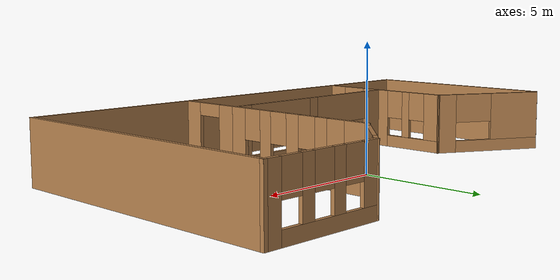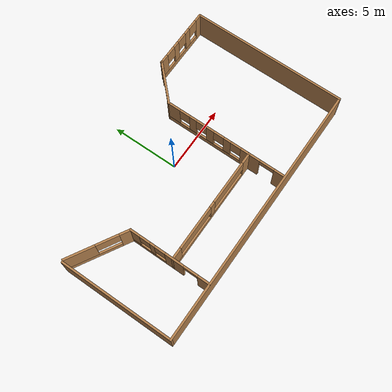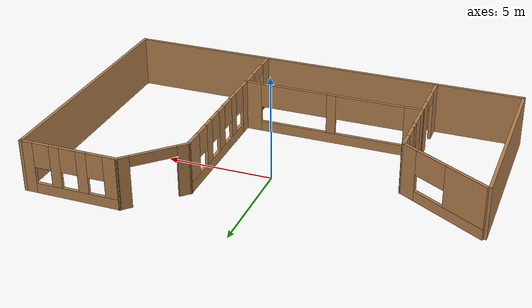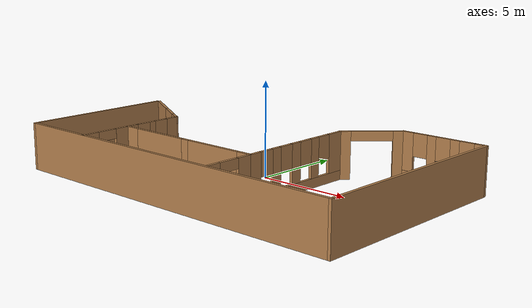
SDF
<?xml version='1.0'?>
<sdf version='1.6'>
  <model name='Robocup'>
    <pose frame=''>-0.08251 -1.14933 0 0 -0 0</pose>
    <link name='Wall_13'>
      <collision name='Wall_13_Collision'>
        <geometry>
          <box>
            <size>8.5 0.15 2.5</size>
          </box>
        </geometry>
        <pose frame=''>0 0 1.25 0 -0 0</pose>
      </collision>
      <visual name='Wall_13_Visual'>
        <pose frame=''>0 0 1.25 0 -0 0</pose>
        <geometry>
          <box>
            <size>8.5 0.15 2.5</size>
          </box>
        </geometry>
        <material>
          <script>
            <uri>file://media/materials/scripts/gazebo.material</uri>
            <name>Gazebo/Wood</name>
          </script>
          <ambient>1 1 1 1</ambient>
        </material>
        <meta>
          <layer>0</layer>
        </meta>
      </visual>
      <pose frame=''>-9.8 -1.64053 0 0 0 -1.5708</pose>
    </link>
    <link name='Wall_15'>
      <collision name='Wall_15_Collision'>
        <geometry>
          <box>
            <size>19.75 0.15 2.5</size>
          </box>
        </geometry>
        <pose frame=''>0 0 1.25 0 -0 0</pose>
      </collision>
      <visual name='Wall_15_Visual'>
        <pose frame=''>0 0 1.25 0 -0 0</pose>
        <geometry>
          <box>
            <size>19.75 0.15 2.5</size>
          </box>
        </geometry>
        <material>
          <script>
            <uri>file://media/materials/scripts/gazebo.material</uri>
            <name>Gazebo/Wood</name>
          </script>
          <ambient>1 1 1 1</ambient>
        </material>
        <meta>
          <layer>0</layer>
        </meta>
      </visual>
      <pose frame=''>0 -5.81553 0 0 -0 0</pose>
    </link>
    <link name='Wall_17'>
      <collision name='Wall_17_Collision'>
        <geometry>
          <box>
            <size>11.75 0.15 2.5</size>
          </box>
        </geometry>
        <pose frame=''>0 0 1.25 0 -0 0</pose>
      </collision>
      <visual name='Wall_17_Visual'>
        <pose frame=''>0 0 1.25 0 -0 0</pose>
        <geometry>
          <box>
            <size>11.75 0.15 2.5</size>
          </box>
        </geometry>
        <material>
          <script>
            <uri>file://media/materials/scripts/gazebo.material</uri>
            <name>Gazebo/Wood</name>
          </script>
          <ambient>1 1 1 1</ambient>
        </material>
        <meta>
          <layer>0</layer>
        </meta>
      </visual>
      <pose frame=''>9.8 -0.015532 0 0 -0 1.5708</pose>
    </link>
    <link name='Wall_18'>
      <pose frame=''>7.5 5.78447 0 0 -0 3.14159</pose>
      <visual name='Wall_18_Visual_0'>
        <pose frame=''>-2.04757 0 1.25 0 -0 0</pose>
        <geometry>
          <box>
            <size>0.654861 0.15 2.5</size>
          </box>
        </geometry>
        <material>
          <script>
            <uri>file://media/materials/scripts/gazebo.material</uri>
            <name>Gazebo/Wood</name>
          </script>
          <ambient>1 1 1 1</ambient>
        </material>
        <meta>
          <layer>0</layer>
        </meta>
      </visual>
      <collision name='Wall_18_Collision_0'>
        <geometry>
          <box>
            <size>0.654861 0.15 2.5</size>
          </box>
        </geometry>
        <pose frame=''>-2.04757 0 1.25 0 -0 0</pose>
      </collision>
      <visual name='Wall_18_Visual_1'>
        <pose frame=''>0.327431 0 0.25 0 -0 0</pose>
        <geometry>
          <box>
            <size>4.09514 0.15 0.5</size>
          </box>
        </geometry>
        <material>
          <script>
            <uri>file://media/materials/scripts/gazebo.material</uri>
            <name>Gazebo/Wood</name>
          </script>
          <ambient>1 1 1 1</ambient>
        </material>
        <meta>
          <layer>0</layer>
        </meta>
      </visual>
      <collision name='Wall_18_Collision_1'>
        <geometry>
          <box>
            <size>4.09514 0.15 0.5</size>
          </box>
        </geometry>
        <pose frame=''>0.327431 0 0.25 0 -0 0</pose>
      </collision>
      <visual name='Wall_18_Visual_2'>
        <pose frame=''>-0.672482 0 1.5 0 -0 0</pose>
        <geometry>
          <box>
            <size>0.495314 0.15 2</size>
          </box>
        </geometry>
        <material>
          <script>
            <uri>file://media/materials/scripts/gazebo.material</uri>
            <name>Gazebo/Wood</name>
          </script>
          <ambient>1 1 1 1</ambient>
        </material>
        <meta>
          <layer>0</layer>
        </meta>
      </visual>
      <collision name='Wall_18_Collision_2'>
        <geometry>
          <box>
            <size>0.495314 0.15 2</size>
          </box>
        </geometry>
        <pose frame=''>-0.672482 0 1.5 0 -0 0</pose>
      </collision>
      <visual name='Wall_18_Visual_3'>
        <pose frame=''>0.622832 0 1.5 0 -0 0</pose>
        <geometry>
          <box>
            <size>0.495314 0.15 2</size>
          </box>
        </geometry>
        <material>
          <script>
            <uri>file://media/materials/scripts/gazebo.material</uri>
            <name>Gazebo/Wood</name>
          </script>
          <ambient>1 1 1 1</ambient>
        </material>
        <meta>
          <layer>0</layer>
        </meta>
      </visual>
      <collision name='Wall_18_Collision_3'>
        <geometry>
          <box>
            <size>0.495314 0.15 2</size>
          </box>
        </geometry>
        <pose frame=''>0.622832 0 1.5 0 -0 0</pose>
      </collision>
      <visual name='Wall_18_Visual_4'>
        <pose frame=''>2.02275 0 1.5 0 -0 0</pose>
        <geometry>
          <box>
            <size>0.704511 0.15 2</size>
          </box>
        </geometry>
        <material>
          <script>
            <uri>file://media/materials/scripts/gazebo.material</uri>
            <name>Gazebo/Wood</name>
          </script>
          <ambient>1 1 1 1</ambient>
        </material>
        <meta>
          <layer>0</layer>
        </meta>
      </visual>
      <collision name='Wall_18_Collision_4'>
        <geometry>
          <box>
            <size>0.704511 0.15 2</size>
          </box>
        </geometry>
        <pose frame=''>2.02275 0 1.5 0 -0 0</pose>
      </collision>
      <visual name='Wall_18_Visual_5'>
        <pose frame=''>-1.32014 0 1.9 0 -0 0</pose>
        <geometry>
          <box>
            <size>0.8 0.15 1.2</size>
          </box>
        </geometry>
        <material>
          <script>
            <uri>file://media/materials/scripts/gazebo.material</uri>
            <name>Gazebo/Wood</name>
          </script>
          <ambient>1 1 1 1</ambient>
        </material>
        <meta>
          <layer>0</layer>
        </meta>
      </visual>
      <collision name='Wall_18_Collision_5'>
        <geometry>
          <box>
            <size>0.8 0.15 1.2</size>
          </box>
        </geometry>
        <pose frame=''>-1.32014 0 1.9 0 -0 0</pose>
      </collision>
      <visual name='Wall_18_Visual_6'>
        <pose frame=''>-0.024825 0 1.9 0 -0 0</pose>
        <geometry>
          <box>
            <size>0.8 0.15 1.2</size>
          </box>
        </geometry>
        <material>
          <script>
            <uri>file://media/materials/scripts/gazebo.material</uri>
            <name>Gazebo/Wood</name>
          </script>
          <ambient>1 1 1 1</ambient>
        </material>
        <meta>
          <layer>0</layer>
        </meta>
      </visual>
      <collision name='Wall_18_Collision_6'>
        <geometry>
          <box>
            <size>0.8 0.15 1.2</size>
          </box>
        </geometry>
        <pose frame=''>-0.024825 0 1.9 0 -0 0</pose>
      </collision>
      <visual name='Wall_18_Visual_7'>
        <pose frame=''>1.27049 0 1.9 0 -0 0</pose>
        <geometry>
          <box>
            <size>0.8 0.15 1.2</size>
          </box>
        </geometry>
        <material>
          <script>
            <uri>file://media/materials/scripts/gazebo.material</uri>
            <name>Gazebo/Wood</name>
          </script>
          <ambient>1 1 1 1</ambient>
        </material>
        <meta>
          <layer>0</layer>
        </meta>
      </visual>
      <collision name='Wall_18_Collision_7'>
        <geometry>
          <box>
            <size>0.8 0.15 1.2</size>
          </box>
        </geometry>
        <pose frame=''>1.27049 0 1.9 0 -0 0</pose>
      </collision>
    </link>
    <link name='Wall_22'>
      <pose frame=''>-1.38838 -2.99714 0 0 -0 3.14159</pose>
      <visual name='Wall_22_Visual_0'>
        <pose frame=''>-3.95278 0 1.25 0 -0 0</pose>
        <geometry>
          <box>
            <size>0.844442 0.15 2.5</size>
          </box>
        </geometry>
        <material>
          <script>
            <uri>file://media/materials/scripts/gazebo.material</uri>
            <name>Gazebo/Wood</name>
          </script>
          <ambient>1 1 1 1</ambient>
        </material>
        <meta>
          <layer>0</layer>
        </meta>
      </visual>
      <collision name='Wall_22_Collision_0'>
        <geometry>
          <box>
            <size>0.844442 0.15 2.5</size>
          </box>
        </geometry>
        <pose frame=''>-3.95278 0 1.25 0 -0 0</pose>
      </collision>
      <visual name='Wall_22_Visual_1'>
        <pose frame=''>0.422221 0 0.25 0 -0 0</pose>
        <geometry>
          <box>
            <size>7.90556 0.15 0.5</size>
          </box>
        </geometry>
        <material>
          <script>
            <uri>file://media/materials/scripts/gazebo.material</uri>
            <name>Gazebo/Wood</name>
          </script>
          <ambient>1 1 1 1</ambient>
        </material>
        <meta>
          <layer>0</layer>
        </meta>
      </visual>
      <collision name='Wall_22_Collision_1'>
        <geometry>
          <box>
            <size>7.90556 0.15 0.5</size>
          </box>
        </geometry>
        <pose frame=''>0.422221 0 0.25 0 -0 0</pose>
      </collision>
      <visual name='Wall_22_Visual_2'>
        <pose frame=''>-0.031057 0 1.5 0 -0 0</pose>
        <geometry>
          <box>
            <size>0.449053 0.15 2</size>
          </box>
        </geometry>
        <material>
          <script>
            <uri>file://media/materials/scripts/gazebo.material</uri>
            <name>Gazebo/Wood</name>
          </script>
          <ambient>1 1 1 1</ambient>
        </material>
        <meta>
          <layer>0</layer>
        </meta>
      </visual>
      <collision name='Wall_22_Collision_2'>
        <geometry>
          <box>
            <size>0.449053 0.15 2</size>
          </box>
        </geometry>
        <pose frame=''>-0.031057 0 1.5 0 -0 0</pose>
      </collision>
      <visual name='Wall_22_Visual_3'>
        <pose frame=''>3.92172 0 1.5 0 -0 0</pose>
        <geometry>
          <box>
            <size>0.906555 0.15 2</size>
          </box>
        </geometry>
        <material>
          <script>
            <uri>file://media/materials/scripts/gazebo.material</uri>
            <name>Gazebo/Wood</name>
          </script>
          <ambient>1 1 1 1</ambient>
        </material>
        <meta>
          <layer>0</layer>
        </meta>
      </visual>
      <collision name='Wall_22_Collision_3'>
        <geometry>
          <box>
            <size>0.906555 0.15 2</size>
          </box>
        </geometry>
        <pose frame=''>3.92172 0 1.5 0 -0 0</pose>
      </collision>
      <visual name='Wall_22_Visual_4'>
        <pose frame=''>-1.89307 0 1.9 0 -0 0</pose>
        <geometry>
          <box>
            <size>3.27497 0.15 1.2</size>
          </box>
        </geometry>
        <material>
          <script>
            <uri>file://media/materials/scripts/gazebo.material</uri>
            <name>Gazebo/Wood</name>
          </script>
          <ambient>1 1 1 1</ambient>
        </material>
        <meta>
          <layer>0</layer>
        </meta>
      </visual>
      <collision name='Wall_22_Collision_4'>
        <geometry>
          <box>
            <size>3.27497 0.15 1.2</size>
          </box>
        </geometry>
        <pose frame=''>-1.89307 0 1.9 0 -0 0</pose>
      </collision>
      <visual name='Wall_22_Visual_5'>
        <pose frame=''>1.83096 0 1.9 0 -0 0</pose>
        <geometry>
          <box>
            <size>3.27497 0.15 1.2</size>
          </box>
        </geometry>
        <material>
          <script>
            <uri>file://media/materials/scripts/gazebo.material</uri>
            <name>Gazebo/Wood</name>
          </script>
          <ambient>1 1 1 1</ambient>
        </material>
        <meta>
          <layer>0</layer>
        </meta>
      </visual>
      <collision name='Wall_22_Collision_5'>
        <geometry>
          <box>
            <size>3.27497 0.15 1.2</size>
          </box>
        </geometry>
        <pose frame=''>1.83096 0 1.9 0 -0 0</pose>
      </collision>
    </link>
    <link name='Wall_26'>
      <pose frame=''>2.93475 0.272603 0 0 -0 1.5708</pose>
      <visual name='Wall_26_Visual_0'>
        <pose frame=''>-2.98586 0 1.25 0 -0 0</pose>
        <geometry>
          <box>
            <size>0.718408 0.15 2.5</size>
          </box>
        </geometry>
        <material>
          <script>
            <uri>file://media/materials/scripts/gazebo.material</uri>
            <name>Gazebo/Wood</name>
          </script>
          <ambient>1 1 1 1</ambient>
        </material>
        <meta>
          <layer>0</layer>
        </meta>
      </visual>
      <collision name='Wall_26_Collision_0'>
        <geometry>
          <box>
            <size>0.718408 0.15 2.5</size>
          </box>
        </geometry>
        <pose frame=''>-2.98586 0 1.25 0 -0 0</pose>
      </collision>
      <visual name='Wall_26_Visual_1'>
        <pose frame=''>0.359204 0 0.25 0 -0 0</pose>
        <geometry>
          <box>
            <size>5.97173 0.15 0.5</size>
          </box>
        </geometry>
        <material>
          <script>
            <uri>file://media/materials/scripts/gazebo.material</uri>
            <name>Gazebo/Wood</name>
          </script>
          <ambient>1 1 1 1</ambient>
        </material>
        <meta>
          <layer>0</layer>
        </meta>
      </visual>
      <collision name='Wall_26_Collision_1'>
        <geometry>
          <box>
            <size>5.97173 0.15 0.5</size>
          </box>
        </geometry>
        <pose frame=''>0.359204 0 0.25 0 -0 0</pose>
      </collision>
      <visual name='Wall_26_Visual_2'>
        <pose frame=''>-1.54474 0 1.5 0 -0 0</pose>
        <geometry>
          <box>
            <size>0.563839 0.15 2</size>
          </box>
        </geometry>
        <material>
          <script>
            <uri>file://media/materials/scripts/gazebo.material</uri>
            <name>Gazebo/Wood</name>
          </script>
          <ambient>1 1 1 1</ambient>
        </material>
        <meta>
          <layer>0</layer>
        </meta>
      </visual>
      <collision name='Wall_26_Collision_2'>
        <geometry>
          <box>
            <size>0.563839 0.15 2</size>
          </box>
        </geometry>
        <pose frame=''>-1.54474 0 1.5 0 -0 0</pose>
      </collision>
      <visual name='Wall_26_Visual_3'>
        <pose frame=''>-0.156104 0 1.5 0 -0 0</pose>
        <geometry>
          <box>
            <size>0.613433 0.15 2</size>
          </box>
        </geometry>
        <material>
          <script>
            <uri>file://media/materials/scripts/gazebo.material</uri>
            <name>Gazebo/Wood</name>
          </script>
          <ambient>1 1 1 1</ambient>
        </material>
        <meta>
          <layer>0</layer>
        </meta>
      </visual>
      <collision name='Wall_26_Collision_3'>
        <geometry>
          <box>
            <size>0.613433 0.15 2</size>
          </box>
        </geometry>
        <pose frame=''>-0.156104 0 1.5 0 -0 0</pose>
      </collision>
      <visual name='Wall_26_Visual_4'>
        <pose frame=''>1.23253 0 1.5 0 -0 0</pose>
        <geometry>
          <box>
            <size>0.563839 0.15 2</size>
          </box>
        </geometry>
        <material>
          <script>
            <uri>file://media/materials/scripts/gazebo.material</uri>
            <name>Gazebo/Wood</name>
          </script>
          <ambient>1 1 1 1</ambient>
        </material>
        <meta>
          <layer>0</layer>
        </meta>
      </visual>
      <collision name='Wall_26_Collision_4'>
        <geometry>
          <box>
            <size>0.563839 0.15 2</size>
          </box>
        </geometry>
        <pose frame=''>1.23253 0 1.5 0 -0 0</pose>
      </collision>
      <visual name='Wall_26_Visual_5'>
        <pose frame=''>2.82976 0 1.5 0 -0 0</pose>
        <geometry>
          <box>
            <size>1.03062 0.15 2</size>
          </box>
        </geometry>
        <material>
          <script>
            <uri>file://media/materials/scripts/gazebo.material</uri>
            <name>Gazebo/Wood</name>
          </script>
          <ambient>1 1 1 1</ambient>
        </material>
        <meta>
          <layer>0</layer>
        </meta>
      </visual>
      <collision name='Wall_26_Collision_5'>
        <geometry>
          <box>
            <size>1.03062 0.15 2</size>
          </box>
        </geometry>
        <pose frame=''>2.82976 0 1.5 0 -0 0</pose>
      </collision>
      <visual name='Wall_26_Visual_6'>
        <pose frame=''>-2.22666 0 1.9 0 -0 0</pose>
        <geometry>
          <box>
            <size>0.8 0.15 1.2</size>
          </box>
        </geometry>
        <material>
          <script>
            <uri>file://media/materials/scripts/gazebo.material</uri>
            <name>Gazebo/Wood</name>
          </script>
          <ambient>1 1 1 1</ambient>
        </material>
        <meta>
          <layer>0</layer>
        </meta>
      </visual>
      <collision name='Wall_26_Collision_6'>
        <geometry>
          <box>
            <size>0.8 0.15 1.2</size>
          </box>
        </geometry>
        <pose frame=''>-2.22666 0 1.9 0 -0 0</pose>
      </collision>
      <visual name='Wall_26_Visual_7'>
        <pose frame=''>-0.862821 0 1.9 0 -0 0</pose>
        <geometry>
          <box>
            <size>0.8 0.15 1.2</size>
          </box>
        </geometry>
        <material>
          <script>
            <uri>file://media/materials/scripts/gazebo.material</uri>
            <name>Gazebo/Wood</name>
          </script>
          <ambient>1 1 1 1</ambient>
        </material>
        <meta>
          <layer>0</layer>
        </meta>
      </visual>
      <collision name='Wall_26_Collision_7'>
        <geometry>
          <box>
            <size>0.8 0.15 1.2</size>
          </box>
        </geometry>
        <pose frame=''>-0.862821 0 1.9 0 -0 0</pose>
      </collision>
      <visual name='Wall_26_Visual_8'>
        <pose frame=''>0.550613 0 1.9 0 -0 0</pose>
        <geometry>
          <box>
            <size>0.8 0.15 1.2</size>
          </box>
        </geometry>
        <material>
          <script>
            <uri>file://media/materials/scripts/gazebo.material</uri>
            <name>Gazebo/Wood</name>
          </script>
          <ambient>1 1 1 1</ambient>
        </material>
        <meta>
          <layer>0</layer>
        </meta>
      </visual>
      <collision name='Wall_26_Collision_8'>
        <geometry>
          <box>
            <size>0.8 0.15 1.2</size>
          </box>
        </geometry>
        <pose frame=''>0.550613 0 1.9 0 -0 0</pose>
      </collision>
      <visual name='Wall_26_Visual_9'>
        <pose frame=''>1.91445 0 1.9 0 -0 0</pose>
        <geometry>
          <box>
            <size>0.8 0.15 1.2</size>
          </box>
        </geometry>
        <material>
          <script>
            <uri>file://media/materials/scripts/gazebo.material</uri>
            <name>Gazebo/Wood</name>
          </script>
          <ambient>1 1 1 1</ambient>
        </material>
        <meta>
          <layer>0</layer>
        </meta>
      </visual>
      <collision name='Wall_26_Collision_9'>
        <geometry>
          <box>
            <size>0.8 0.15 1.2</size>
          </box>
        </geometry>
        <pose frame=''>1.91445 0 1.9 0 -0 0</pose>
      </collision>
    </link>
    <link name='Wall_30'>
      <pose frame=''>4.06737 4.66341 0 0 -0 0.780266</pose>
      <visual name='Wall_30_Visual_0'>
        <pose frame=''>-1.36338 0 1.25 0 -0 0</pose>
        <geometry>
          <box>
            <size>0.610486 0.15 2.5</size>
          </box>
        </geometry>
        <material>
          <script>
            <uri>file://media/materials/scripts/gazebo.material</uri>
            <name>Gazebo/Wood</name>
          </script>
          <ambient>1 1 1 1</ambient>
        </material>
        <meta>
          <layer>0</layer>
        </meta>
      </visual>
      <collision name='Wall_30_Collision_0'>
        <geometry>
          <box>
            <size>0.610486 0.15 2.5</size>
          </box>
        </geometry>
        <pose frame=''>-1.36338 0 1.25 0 -0 0</pose>
      </collision>
      <visual name='Wall_30_Visual_1'>
        <pose frame=''>1.36124 0 1.25 0 -0 0</pose>
        <geometry>
          <box>
            <size>0.614761 0.15 2.5</size>
          </box>
        </geometry>
        <material>
          <script>
            <uri>file://media/materials/scripts/gazebo.material</uri>
            <name>Gazebo/Wood</name>
          </script>
          <ambient>1 1 1 1</ambient>
        </material>
        <meta>
          <layer>0</layer>
        </meta>
      </visual>
      <collision name='Wall_30_Collision_1'>
        <geometry>
          <box>
            <size>0.614761 0.15 2.5</size>
          </box>
        </geometry>
        <pose frame=''>1.36124 0 1.25 0 -0 0</pose>
      </collision>
      <visual name='Wall_30_Visual_2'>
        <pose frame=''>-0.002137 0 2.25 0 -0 0</pose>
        <geometry>
          <box>
            <size>2.11199 0.15 0.5</size>
          </box>
        </geometry>
        <material>
          <script>
            <uri>file://media/materials/scripts/gazebo.material</uri>
            <name>Gazebo/Wood</name>
          </script>
          <ambient>1 1 1 1</ambient>
        </material>
        <meta>
          <layer>0</layer>
        </meta>
      </visual>
      <collision name='Wall_30_Collision_2'>
        <geometry>
          <box>
            <size>2.11199 0.15 0.5</size>
          </box>
        </geometry>
        <pose frame=''>-0.002137 0 2.25 0 -0 0</pose>
      </collision>
    </link>
    <link name='Wall_32'>
      <pose frame=''>2.93475 -4.3274 0 0 0 -1.5708</pose>
      <visual name='Wall_32_Visual_0'>
        <pose frame=''>-0.946076 0 1.25 0 -0 0</pose>
        <geometry>
          <box>
            <size>0.919271 0.15 2.5</size>
          </box>
        </geometry>
        <material>
          <script>
            <uri>file://media/materials/scripts/gazebo.material</uri>
            <name>Gazebo/Wood</name>
          </script>
          <ambient>1 1 1 1</ambient>
        </material>
        <meta>
          <layer>0</layer>
        </meta>
      </visual>
      <collision name='Wall_32_Collision_0'>
        <geometry>
          <box>
            <size>0.919271 0.15 2.5</size>
          </box>
        </geometry>
        <pose frame=''>-0.946076 0 1.25 0 -0 0</pose>
      </collision>
      <visual name='Wall_32_Visual_1'>
        <pose frame=''>1.02529 0 1.25 0 -0 0</pose>
        <geometry>
          <box>
            <size>0.760846 0.15 2.5</size>
          </box>
        </geometry>
        <material>
          <script>
            <uri>file://media/materials/scripts/gazebo.material</uri>
            <name>Gazebo/Wood</name>
          </script>
          <ambient>1 1 1 1</ambient>
        </material>
        <meta>
          <layer>0</layer>
        </meta>
      </visual>
      <collision name='Wall_32_Collision_1'>
        <geometry>
          <box>
            <size>0.760846 0.15 2.5</size>
          </box>
        </geometry>
        <pose frame=''>1.02529 0 1.25 0 -0 0</pose>
      </collision>
      <visual name='Wall_32_Visual_2'>
        <pose frame=''>0.079212 0 2.25 0 -0 0</pose>
        <geometry>
          <box>
            <size>1.13131 0.15 0.5</size>
          </box>
        </geometry>
        <material>
          <script>
            <uri>file://media/materials/scripts/gazebo.material</uri>
            <name>Gazebo/Wood</name>
          </script>
          <ambient>1 1 1 1</ambient>
        </material>
        <meta>
          <layer>0</layer>
        </meta>
      </visual>
      <collision name='Wall_32_Collision_2'>
        <geometry>
          <box>
            <size>1.13131 0.15 0.5</size>
          </box>
        </geometry>
        <pose frame=''>0.079212 0 2.25 0 -0 0</pose>
      </collision>
    </link>
    <link name='Wall_36'>
      <pose frame=''>-5.68275 -2.74444 0 0 -0 1.5708</pose>
      <visual name='Wall_36_Visual_0'>
        <pose frame=''>-2.6475 0 1.25 0 -0 0</pose>
        <geometry>
          <box>
            <size>0.95501 0.15 2.5</size>
          </box>
        </geometry>
        <material>
          <script>
            <uri>file://media/materials/scripts/gazebo.material</uri>
            <name>Gazebo/Wood</name>
          </script>
          <ambient>1 1 1 1</ambient>
        </material>
        <meta>
          <layer>0</layer>
        </meta>
      </visual>
      <collision name='Wall_36_Collision_0'>
        <geometry>
          <box>
            <size>0.95501 0.15 2.5</size>
          </box>
        </geometry>
        <pose frame=''>-2.6475 0 1.25 0 -0 0</pose>
      </collision>
      <visual name='Wall_36_Visual_1'>
        <pose frame=''>-0.370763 0 1.25 0 -0 0</pose>
        <geometry>
          <box>
            <size>1.42837 0.15 2.5</size>
          </box>
        </geometry>
        <material>
          <script>
            <uri>file://media/materials/scripts/gazebo.material</uri>
            <name>Gazebo/Wood</name>
          </script>
          <ambient>1 1 1 1</ambient>
        </material>
        <meta>
          <layer>0</layer>
        </meta>
      </visual>
      <collision name='Wall_36_Collision_1'>
        <geometry>
          <box>
            <size>1.42837 0.15 2.5</size>
          </box>
        </geometry>
        <pose frame=''>-0.370763 0 1.25 0 -0 0</pose>
      </collision>
      <visual name='Wall_36_Visual_2'>
        <pose frame=''>1.73421 0 0.25 0 -0 0</pose>
        <geometry>
          <box>
            <size>2.78158 0.15 0.5</size>
          </box>
        </geometry>
        <material>
          <script>
            <uri>file://media/materials/scripts/gazebo.material</uri>
            <name>Gazebo/Wood</name>
          </script>
          <ambient>1 1 1 1</ambient>
        </material>
        <meta>
          <layer>0</layer>
        </meta>
      </visual>
      <collision name='Wall_36_Collision_2'>
        <geometry>
          <box>
            <size>2.78158 0.15 0.5</size>
          </box>
        </geometry>
        <pose frame=''>1.73421 0 0.25 0 -0 0</pose>
      </collision>
      <visual name='Wall_36_Visual_3'>
        <pose frame=''>1.33325 0 1.5 0 -0 0</pose>
        <geometry>
          <box>
            <size>0.379661 0.15 2</size>
          </box>
        </geometry>
        <material>
          <script>
            <uri>file://media/materials/scripts/gazebo.material</uri>
            <name>Gazebo/Wood</name>
          </script>
          <ambient>1 1 1 1</ambient>
        </material>
        <meta>
          <layer>0</layer>
        </meta>
      </visual>
      <collision name='Wall_36_Collision_3'>
        <geometry>
          <box>
            <size>0.379661 0.15 2</size>
          </box>
        </geometry>
        <pose frame=''>1.33325 0 1.5 0 -0 0</pose>
      </collision>
      <visual name='Wall_36_Visual_4'>
        <pose frame=''>2.72404 0 1.5 0 -0 0</pose>
        <geometry>
          <box>
            <size>0.801919 0.15 2</size>
          </box>
        </geometry>
        <material>
          <script>
            <uri>file://media/materials/scripts/gazebo.material</uri>
            <name>Gazebo/Wood</name>
          </script>
          <ambient>1 1 1 1</ambient>
        </material>
        <meta>
          <layer>0</layer>
        </meta>
      </visual>
      <collision name='Wall_36_Collision_4'>
        <geometry>
          <box>
            <size>0.801919 0.15 2</size>
          </box>
        </geometry>
        <pose frame=''>2.72404 0 1.5 0 -0 0</pose>
      </collision>
      <visual name='Wall_36_Visual_5'>
        <pose frame=''>0.74342 0 1.9 0 -0 0</pose>
        <geometry>
          <box>
            <size>0.8 0.15 1.2</size>
          </box>
        </geometry>
        <material>
          <script>
            <uri>file://media/materials/scripts/gazebo.material</uri>
            <name>Gazebo/Wood</name>
          </script>
          <ambient>1 1 1 1</ambient>
        </material>
        <meta>
          <layer>0</layer>
        </meta>
      </visual>
      <collision name='Wall_36_Collision_5'>
        <geometry>
          <box>
            <size>0.8 0.15 1.2</size>
          </box>
        </geometry>
        <pose frame=''>0.74342 0 1.9 0 -0 0</pose>
      </collision>
      <visual name='Wall_36_Visual_6'>
        <pose frame=''>1.92308 0 1.9 0 -0 0</pose>
        <geometry>
          <box>
            <size>0.8 0.15 1.2</size>
          </box>
        </geometry>
        <material>
          <script>
            <uri>file://media/materials/scripts/gazebo.material</uri>
            <name>Gazebo/Wood</name>
          </script>
          <ambient>1 1 1 1</ambient>
        </material>
        <meta>
          <layer>0</layer>
        </meta>
      </visual>
      <collision name='Wall_36_Collision_6'>
        <geometry>
          <box>
            <size>0.8 0.15 1.2</size>
          </box>
        </geometry>
        <pose frame=''>1.92308 0 1.9 0 -0 0</pose>
      </collision>
      <visual name='Wall_36_Visual_7'>
        <pose frame=''>-1.62747 0 2.25 0 -0 0</pose>
        <geometry>
          <box>
            <size>1.08505 0.15 0.5</size>
          </box>
        </geometry>
        <material>
          <script>
            <uri>file://media/materials/scripts/gazebo.material</uri>
            <name>Gazebo/Wood</name>
          </script>
          <ambient>1 1 1 1</ambient>
        </material>
        <meta>
          <layer>0</layer>
        </meta>
      </visual>
      <collision name='Wall_36_Collision_7'>
        <geometry>
          <box>
            <size>1.08505 0.15 0.5</size>
          </box>
        </geometry>
        <pose frame=''>-1.62747 0 2.25 0 -0 0</pose>
      </collision>
    </link>
    <link name='Wall_37'>
      <pose frame=''>-7.67461 1.45555 0 0 -0 2.61799</pose>
      <visual name='Wall_37_Visual_0'>
        <pose frame=''>-1.9437 0 1.25 0 -0 0</pose>
        <geometry>
          <box>
            <size>0.862601 0.15 2.5</size>
          </box>
        </geometry>
        <material>
          <script>
            <uri>file://media/materials/scripts/gazebo.material</uri>
            <name>Gazebo/Wood</name>
          </script>
          <ambient>1 1 1 1</ambient>
        </material>
        <meta>
          <layer>0</layer>
        </meta>
      </visual>
      <collision name='Wall_37_Collision_0'>
        <geometry>
          <box>
            <size>0.862601 0.15 2.5</size>
          </box>
        </geometry>
        <pose frame=''>-1.9437 0 1.25 0 -0 0</pose>
      </collision>
      <visual name='Wall_37_Visual_1'>
        <pose frame=''>0.431301 0 0.25 0 -0 0</pose>
        <geometry>
          <box>
            <size>3.8874 0.15 0.5</size>
          </box>
        </geometry>
        <material>
          <script>
            <uri>file://media/materials/scripts/gazebo.material</uri>
            <name>Gazebo/Wood</name>
          </script>
          <ambient>1 1 1 1</ambient>
        </material>
        <meta>
          <layer>0</layer>
        </meta>
      </visual>
      <collision name='Wall_37_Collision_1'>
        <geometry>
          <box>
            <size>3.8874 0.15 0.5</size>
          </box>
        </geometry>
        <pose frame=''>0.431301 0 0.25 0 -0 0</pose>
      </collision>
      <visual name='Wall_37_Visual_2'>
        <pose frame=''>1.25518 0 1.5 0 -0 0</pose>
        <geometry>
          <box>
            <size>2.23965 0.15 2</size>
          </box>
        </geometry>
        <material>
          <script>
            <uri>file://media/materials/scripts/gazebo.material</uri>
            <name>Gazebo/Wood</name>
          </script>
          <ambient>1 1 1 1</ambient>
        </material>
        <meta>
          <layer>0</layer>
        </meta>
      </visual>
      <collision name='Wall_37_Collision_2'>
        <geometry>
          <box>
            <size>2.23965 0.15 2</size>
          </box>
        </geometry>
        <pose frame=''>1.25518 0 1.5 0 -0 0</pose>
      </collision>
      <visual name='Wall_37_Visual_3'>
        <pose frame=''>-0.688523 0 1.9 0 -0 0</pose>
        <geometry>
          <box>
            <size>1.64775 0.15 1.2</size>
          </box>
        </geometry>
        <material>
          <script>
            <uri>file://media/materials/scripts/gazebo.material</uri>
            <name>Gazebo/Wood</name>
          </script>
          <ambient>1 1 1 1</ambient>
        </material>
        <meta>
          <layer>0</layer>
        </meta>
      </visual>
      <collision name='Wall_37_Collision_3'>
        <geometry>
          <box>
            <size>1.64775 0.15 1.2</size>
          </box>
        </geometry>
        <pose frame=''>-0.688523 0 1.9 0 -0 0</pose>
      </collision>
    </link>
    <static>1</static>
  </model>
</sdf>
